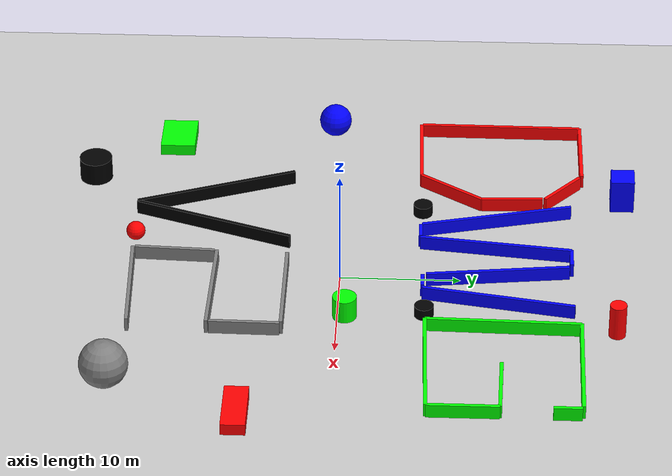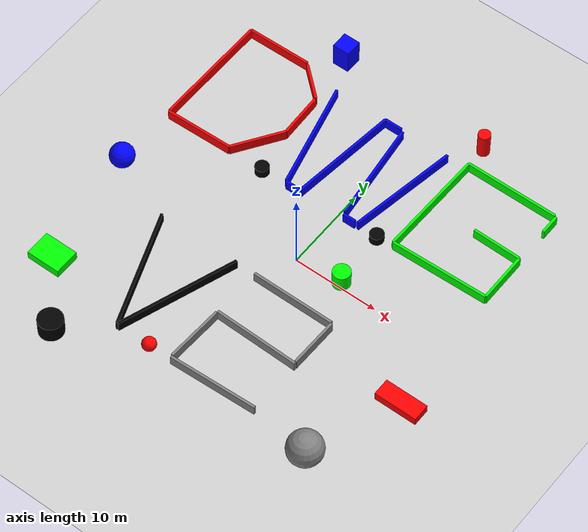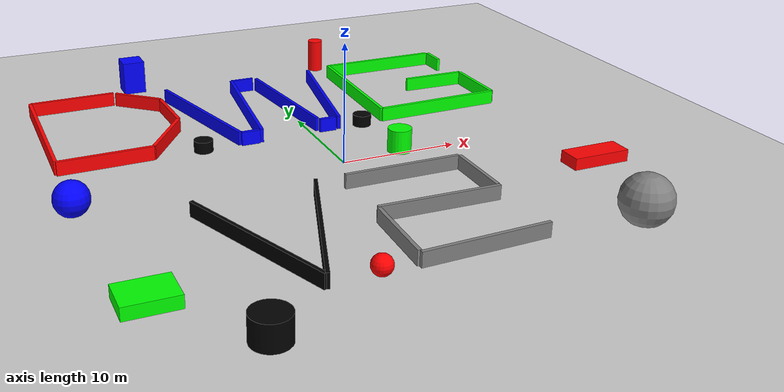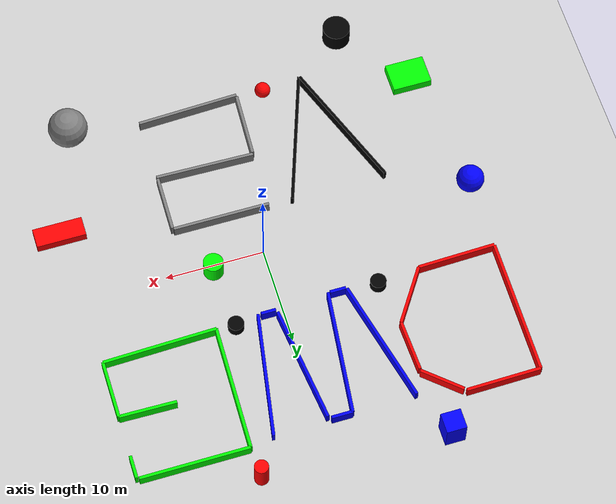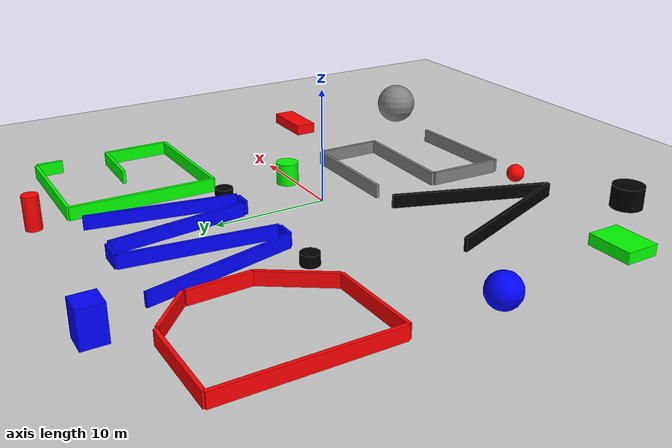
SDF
<?xml version='1.0' encoding='utf-8'?>
<sdf version="1.9">
  <world name="new_world">
    <physics name="1ms" type="dart">
      <max_step_size>0.001</max_step_size>
      <real_time_factor>1</real_time_factor>
      <real_time_update_rate>1000</real_time_update_rate>
    </physics>
    <plugin name="gz::sim::systems::Physics" filename="gz-sim-physics-system" />
    <plugin name="gz::sim::systems::UserCommands" filename="gz-sim-user-commands-system" />
    <plugin name="gz::sim::systems::SceneBroadcaster" filename="gz-sim-scene-broadcaster-system" />
    <plugin name="gz::sim::systems::Contact" filename="gz-sim-contact-system" />
    <plugin name="gz::sim::systems::Sensors" filename="gz-sim-sensors-system">
      <render_engine>ogre2</render_engine>
    </plugin>
    <gravity>0 0 -9.8</gravity>
    <magnetic_field>6e-06 2.3e-05 -4.2e-05</magnetic_field>
    <atmosphere type="adiabatic" />
    <scene>
      <ambient>0.4 0.4 0.4 1</ambient>
      <background>0.7 0.7 0.7 1</background>
      <shadows>true</shadows>
    </scene>
    <model name="ground_plane">
      <static>true</static>
      <link name="link">
        <collision name="collision">
          <geometry>
            <plane>
              <normal>0 0 1</normal>
              <size>100 100</size>
            </plane>
          </geometry>
          <surface>
            <friction>
              <ode />
            </friction>
            <bounce />
            <contact />
          </surface>
        </collision>
        <visual name="visual">
          <geometry>
            <plane>
              <normal>0 0 1</normal>
              <size>100 100</size>
            </plane>
          </geometry>
          <material>
            <ambient>0.8 0.8 0.8 1</ambient>
            <diffuse>0.8 0.8 0.8 1</diffuse>
            <specular>0.8 0.8 0.8 1</specular>
          </material>
        </visual>
        <pose>0 0 0 0 -0 0</pose>
        <inertial>
          <pose>0 0 0 0 -0 0</pose>
          <mass>1</mass>
          <inertia>
            <ixx>1</ixx>
            <ixy>0</ixy>
            <ixz>0</ixz>
            <iyy>1</iyy>
            <iyz>0</iyz>
            <izz>1</izz>
          </inertia>
        </inertial>
        <enable_wind>false</enable_wind>
      </link>
      <pose>0 0 0 0 -0 0</pose>
      <self_collide>false</self_collide>
    </model>
    <light name="sun" type="directional">
      <pose>0 0 10 0 -0 0</pose>
      <cast_shadows>true</cast_shadows>
      <intensity>1</intensity>
      <direction>-0.5 0.1 -0.9</direction>
      <diffuse>0.8 0.8 0.8 1</diffuse>
      <specular>0.2 0.2 0.2 1</specular>
      <attenuation>
        <range>1000</range>
        <linear>0.01</linear>
        <constant>0.90000000000000002</constant>
        <quadratic>0.001</quadratic>
      </attenuation>
      <spot>
        <inner_angle>0</inner_angle>
        <outer_angle>0</outer_angle>
        <falloff>0</falloff>
      </spot>
    </light>
  <model name="wall_1">
            <static>true</static>
            <type>wall</type>
            <pose>-21.750000 13.300000 0.600000 0 0 -1.578043</pose>
            <link name="link">
                <collision name="collision">
                    <geometry><box><size>13.800362 0.300000 1.200000</size></box></geometry>
                </collision>
                <visual name="visual">
                    <geometry><box><size>13.800362 0.300000 1.200000</size></box></geometry>
                    <material>
                        <diffuse>1 0 0 1</diffuse>
                    </material>
                </visual></link></model><model name="wall_2">
            <static>true</static>
            <type>wall</type>
            <pose>-17.850000 6.400000 0.600000 0 0 0.025311</pose>
            <link name="link">
                <collision name="collision">
                    <geometry><box><size>7.902531 0.300000 1.200000</size></box></geometry>
                </collision>
                <visual name="visual">
                    <geometry><box><size>7.902531 0.300000 1.200000</size></box></geometry>
                    <material>
                        <diffuse>1 0 0 1</diffuse>
                    </material>
                </visual></link></model><model name="wall_3">
            <static>true</static>
            <type>wall</type>
            <pose>-12.150000 9.100000 0.600000 0 0 0.978369</pose>
            <link name="link">
                <collision name="collision">
                    <geometry><box><size>6.268174 0.300000 1.200000</size></box></geometry>
                </collision>
                <visual name="visual">
                    <geometry><box><size>6.268174 0.300000 1.200000</size></box></geometry>
                    <material>
                        <diffuse>1 0 0 1</diffuse>
                    </material>
                </visual></link></model><model name="wall_4">
            <static>true</static>
            <type>wall</type>
            <pose>-10.500000 14.300000 0.600000 0 0 1.609239</pose>
            <link name="link">
                <collision name="collision">
                    <geometry><box><size>5.203845 0.300000 1.200000</size></box></geometry>
                </collision>
                <visual name="visual">
                    <geometry><box><size>5.203845 0.300000 1.200000</size></box></geometry>
                    <material>
                        <diffuse>1 0 0 1</diffuse>
                    </material>
                </visual></link></model><model name="wall_5">
            <static>true</static>
            <type>wall</type>
            <pose>-17.950000 20.250000 0.600000 0 0 0.013333</pose>
            <link name="link">
                <collision name="collision">
                    <geometry><box><size>7.500667 0.300000 1.200000</size></box></geometry>
                </collision>
                <visual name="visual">
                    <geometry><box><size>7.500667 0.300000 1.200000</size></box></geometry>
                    <material>
                        <diffuse>1 0 0 1</diffuse>
                    </material>
                </visual></link></model><model name="wall_6">
            <static>true</static>
            <type>wall</type>
            <pose>-12.300000 18.600000 0.600000 0 0 -0.722979</pose>
            <link name="link">
                <collision name="collision">
                    <geometry><box><size>4.534314 0.300000 1.200000</size></box></geometry>
                </collision>
                <visual name="visual">
                    <geometry><box><size>4.534314 0.300000 1.200000</size></box></geometry>
                    <material>
                        <diffuse>1 0 0 1</diffuse>
                    </material>
                </visual></link></model><model name="wall_7">
            <static>true</static>
            <type>wall</type>
            <pose>-8.000000 13.000000 0.600000 0 0 -1.337053</pose>
            <link name="link">
                <collision name="collision">
                    <geometry><box><size>12.952220 0.300000 1.200000</size></box></geometry>
                </collision>
                <visual name="visual">
                    <geometry><box><size>12.952220 0.300000 1.200000</size></box></geometry>
                    <material>
                        <diffuse>0 0 1 1</diffuse>
                    </material>
                </visual></link></model><model name="wall_8">
            <static>true</static>
            <type>wall</type>
            <pose>-5.600000 6.600000 0.600000 0 0 0.000000</pose>
            <link name="link">
                <collision name="collision">
                    <geometry><box><size>1.600000 0.300000 1.200000</size></box></geometry>
                </collision>
                <visual name="visual">
                    <geometry><box><size>1.600000 0.300000 1.200000</size></box></geometry>
                    <material>
                        <diffuse>0 0 1 1</diffuse>
                    </material>
                </visual></link></model><model name="wall_9">
            <static>true</static>
            <type>wall</type>
            <pose>-3.850000 12.950000 0.600000 0 0 1.453231</pose>
            <link name="link">
                <collision name="collision">
                    <geometry><box><size>12.788276 0.300000 1.200000</size></box></geometry>
                </collision>
                <visual name="visual">
                    <geometry><box><size>12.788276 0.300000 1.200000</size></box></geometry>
                    <material>
                        <diffuse>0 0 1 1</diffuse>
                    </material>
                </visual></link></model><model name="wall_10">
            <static>true</static>
            <type>wall</type>
            <pose>-2.050000 19.300000 0.600000 0 0 0.000000</pose>
            <link name="link">
                <collision name="collision">
                    <geometry><box><size>2.100000 0.300000 1.200000</size></box></geometry>
                </collision>
                <visual name="visual">
                    <geometry><box><size>2.100000 0.300000 1.200000</size></box></geometry>
                    <material>
                        <diffuse>0 0 1 1</diffuse>
                    </material>
                </visual></link></model><model name="wall_11">
            <static>true</static>
            <type>wall</type>
            <pose>0.000000 13.150000 0.600000 0 0 -1.453688</pose>
            <link name="link">
                <collision name="collision">
                    <geometry><box><size>11.982070 0.300000 1.200000</size></box></geometry>
                </collision>
                <visual name="visual">
                    <geometry><box><size>11.982070 0.300000 1.200000</size></box></geometry>
                    <material>
                        <diffuse>0 0 1 1</diffuse>
                    </material>
                </visual></link></model><model name="wall_12">
            <static>true</static>
            <type>wall</type>
            <pose>1.550000 6.900000 0.600000 0 0 0.000000</pose>
            <link name="link">
                <collision name="collision">
                    <geometry><box><size>1.500000 0.300000 1.200000</size></box></geometry>
                </collision>
                <visual name="visual">
                    <geometry><box><size>1.500000 0.300000 1.200000</size></box></geometry>
                    <material>
                        <diffuse>0 0 1 1</diffuse>
                    </material>
                </visual></link></model><model name="wall_13">
            <static>true</static>
            <type>wall</type>
            <pose>3.700000 13.200000 0.600000 0 0 1.397936</pose>
            <link name="link">
                <collision name="collision">
                    <geometry><box><size>12.790622 0.300000 1.200000</size></box></geometry>
                </collision>
                <visual name="visual">
                    <geometry><box><size>12.790622 0.300000 1.200000</size></box></geometry>
                    <material>
                        <diffuse>0 0 1 1</diffuse>
                    </material>
                </visual></link></model><model name="wall_14">
            <static>true</static>
            <type>wall</type>
            <pose>12.650000 20.000000 0.600000 0 0 0.000000</pose>
            <link name="link">
                <collision name="collision">
                    <geometry><box><size>10.900000 0.300000 1.200000</size></box></geometry>
                </collision>
                <visual name="visual">
                    <geometry><box><size>10.900000 0.300000 1.200000</size></box></geometry>
                    <material>
                        <diffuse>0 1 0 1</diffuse>
                    </material>
                </visual></link></model><model name="wall_15">
            <static>true</static>
            <type>wall</type>
            <pose>18.300000 18.750000 0.600000 0 0 -1.570796</pose>
            <link name="link">
                <collision name="collision">
                    <geometry><box><size>2.300000 0.300000 1.200000</size></box></geometry>
                </collision>
                <visual name="visual">
                    <geometry><box><size>2.300000 0.300000 1.200000</size></box></geometry>
                    <material>
                        <diffuse>0 1 0 1</diffuse>
                    </material>
                </visual></link></model><model name="wall_16">
            <static>true</static>
            <type>wall</type>
            <pose>7.050000 13.600000 0.600000 0 0 -1.594230</pose>
            <link name="link">
                <collision name="collision">
                    <geometry><box><size>12.803515 0.300000 1.200000</size></box></geometry>
                </collision>
                <visual name="visual">
                    <geometry><box><size>12.803515 0.300000 1.200000</size></box></geometry>
                    <material>
                        <diffuse>0 1 0 1</diffuse>
                    </material>
                </visual></link></model><model name="wall_17">
            <static>true</static>
            <type>wall</type>
            <pose>12.600000 7.350000 0.600000 0 0 0.026310</pose>
            <link name="link">
                <collision name="collision">
                    <geometry><box><size>11.403947 0.300000 1.200000</size></box></geometry>
                </collision>
                <visual name="visual">
                    <geometry><box><size>11.403947 0.300000 1.200000</size></box></geometry>
                    <material>
                        <diffuse>0 1 0 1</diffuse>
                    </material>
                </visual></link></model><model name="wall_18">
            <static>true</static>
            <type>wall</type>
            <pose>18.300000 10.450000 0.600000 0 0 1.570796</pose>
            <link name="link">
                <collision name="collision">
                    <geometry><box><size>5.900000 0.300000 1.200000</size></box></geometry>
                </collision>
                <visual name="visual">
                    <geometry><box><size>5.900000 0.300000 1.200000</size></box></geometry>
                    <material>
                        <diffuse>0 1 0 1</diffuse>
                    </material>
                </visual></link></model><model name="wall_19">
            <static>true</static>
            <type>wall</type>
            <pose>15.450000 13.450000 0.600000 0 0 3.124051</pose>
            <link name="link">
                <collision name="collision">
                    <geometry><box><size>5.700877 0.300000 1.200000</size></box></geometry>
                </collision>
                <visual name="visual">
                    <geometry><box><size>5.700877 0.300000 1.200000</size></box></geometry>
                    <material>
                        <diffuse>0 1 0 1</diffuse>
                    </material>
                </visual></link></model><model name="wall_20">
            <static>true</static>
            <type>wall</type>
            <pose>-11.550000 -11.100000 0.600000 0 0 -1.215351</pose>
            <link name="link">
                <collision name="collision">
                    <geometry><box><size>14.080128 0.300000 1.200000</size></box></geometry>
                </collision>
                <visual name="visual">
                    <geometry><box><size>14.080128 0.300000 1.200000</size></box></geometry>
                    <material>
                        <diffuse>0 0 0 1</diffuse>
                    </material>
                </visual></link></model><model name="wall_21">
            <static>true</static>
            <type>wall</type>
            <pose>-6.650000 -11.050000 0.600000 0 0 1.231110</pose>
            <link name="link">
                <collision name="collision">
                    <geometry><box><size>14.106027 0.300000 1.200000</size></box></geometry>
                </collision>
                <visual name="visual">
                    <geometry><box><size>14.106027 0.300000 1.200000</size></box></geometry>
                    <material>
                        <diffuse>0 0 0 1</diffuse>
                    </material>
                </visual></link></model><model name="wall_22">
            <static>true</static>
            <type>wall</type>
            <pose>3.000000 -4.500000 0.600000 0 0 0.000000</pose>
            <link name="link">
                <collision name="collision">
                    <geometry><box><size>9.800000 0.300000 1.200000</size></box></geometry>
                </collision>
                <visual name="visual">
                    <geometry><box><size>9.800000 0.300000 1.200000</size></box></geometry>
                    <material>
                        <diffuse>0.5 0.5 0.5 1</diffuse>
                    </material>
                </visual></link></model><model name="wall_23">
            <static>true</static>
            <type>wall</type>
            <pose>7.950000 -7.500000 0.600000 0 0 -1.588036</pose>
            <link name="link">
                <collision name="collision">
                    <geometry><box><size>5.800862 0.300000 1.200000</size></box></geometry>
                </collision>
                <visual name="visual">
                    <geometry><box><size>5.800862 0.300000 1.200000</size></box></geometry>
                    <material>
                        <diffuse>0.5 0.5 0.5 1</diffuse>
                    </material>
                </visual></link></model><model name="wall_24">
            <static>true</static>
            <type>wall</type>
            <pose>3.000000 -10.500000 0.600000 0 0 3.121595</pose>
            <link name="link">
                <collision name="collision">
                    <geometry><box><size>10.002000 0.300000 1.200000</size></box></geometry>
                </collision>
                <visual name="visual">
                    <geometry><box><size>10.002000 0.300000 1.200000</size></box></geometry>
                    <material>
                        <diffuse>0.5 0.5 0.5 1</diffuse>
                    </material>
                </visual></link></model><model name="wall_25">
            <static>true</static>
            <type>wall</type>
            <pose>-2.150000 -13.950000 0.600000 0 0 -1.615543</pose>
            <link name="link">
                <collision name="collision">
                    <geometry><box><size>6.706713 0.300000 1.200000</size></box></geometry>
                </collision>
                <visual name="visual">
                    <geometry><box><size>6.706713 0.300000 1.200000</size></box></geometry>
                    <material>
                        <diffuse>0.5 0.5 0.5 1</diffuse>
                    </material>
                </visual></link></model><model name="wall_26">
            <static>true</static>
            <type>wall</type>
            <pose>2.850000 -17.300000 0.600000 0 0 0.038815</pose>
            <link name="link">
                <collision name="collision">
                    <geometry><box><size>10.307764 0.300000 1.200000</size></box></geometry>
                </collision>
                <visual name="visual">
                    <geometry><box><size>10.307764 0.300000 1.200000</size></box></geometry>
                    <material>
                        <diffuse>0.5 0.5 0.5 1</diffuse>
                    </material>
                </visual></link></model><model name="sphere_1">
            <static>true</static>
            <type>sphere</type>
            <pose>-5.100000 -17.500000 0.800000 0 0 0</pose>
            <link name="link">
                <collision name="collision">
                    <geometry><sphere><radius>0.800000</radius></sphere></geometry>
                </collision>
                <visual name="visual">
                    <geometry><sphere><radius>0.800000</radius></sphere></geometry>
                    <material>
                        <diffuse>1 0 0 1</diffuse>
                    </material>
                </visual></link></model><model name="cylinder_2">
            <static>true</static>
            <type>cylinder</type>
            <pose>4.900000 7.100000 0.500000 0 0 0</pose>
            <link name="link">
                <collision name="collision">
                    <geometry><cylinder><radius>0.800000</radius><length>1.000000</length></cylinder></geometry>
                </collision>
                <visual name="visual">
                    <geometry><cylinder><radius>0.800000</radius><length>1.000000</length></cylinder></geometry>
                    <material>
                        <diffuse>0 0 0 1</diffuse>
                    </material>
                </visual></link></model><model name="cylinder_1">
            <static>true</static>
            <type>cylinder</type>
            <pose>-9.700000 6.700000 0.500000 0 0 0</pose>
            <link name="link">
                <collision name="collision">
                    <geometry><cylinder><radius>0.800000</radius><length>1.000000</length></cylinder></geometry>
                </collision>
                <visual name="visual">
                    <geometry><cylinder><radius>0.800000</radius><length>1.000000</length></cylinder></geometry>
                    <material>
                        <diffuse>0 0 0 1</diffuse>
                    </material>
                </visual></link></model><model name="box_2">
            <static>true</static>
            <type>box</type>
            <pose>18.800000 -7.500000 0.500000 0 0 0</pose>
            <link name="link">
                <collision name="collision">
                    <geometry><box><size>5.000000 2.000000 1.000000</size></box></geometry>
                </collision>
                <visual name="visual">
                    <geometry><box><size>5.000000 2.000000 1.000000</size></box></geometry>
                    <material>
                        <diffuse>1 0 0 1</diffuse>
                    </material>
                </visual></link></model><model name="sphere_3">
            <static>true</static>
            <type>sphere</type>
            <pose>-21.900000 -1.300000 1.400000 0 0 0</pose>
            <link name="link">
                <collision name="collision">
                    <geometry><sphere><radius>1.400000</radius></sphere></geometry>
                </collision>
                <visual name="visual">
                    <geometry><sphere><radius>1.400000</radius></sphere></geometry>
                    <material>
                        <diffuse>0 0 1 1</diffuse>
                    </material>
                </visual></link></model><model name="cylinder_4">
            <static>true</static>
            <type>cylinder</type>
            <pose>-14.300000 -21.800000 1.000000 0 0 0</pose>
            <link name="link">
                <collision name="collision">
                    <geometry><cylinder><radius>1.400000</radius><length>2.000000</length></cylinder></geometry>
                </collision>
                <visual name="visual">
                    <geometry><cylinder><radius>1.400000</radius><length>2.000000</length></cylinder></geometry>
                    <material>
                        <diffuse>0 0 0 1</diffuse>
                    </material>
                </visual></link></model><model name="box_3">
            <static>true</static>
            <type>box</type>
            <pose>-11.600000 23.700000 1.500000 0 0 0</pose>
            <link name="link">
                <collision name="collision">
                    <geometry><box><size>2.000000 2.000000 3.000000</size></box></geometry>
                </collision>
                <visual name="visual">
                    <geometry><box><size>2.000000 2.000000 3.000000</size></box></geometry>
                    <material>
                        <diffuse>0 0 1 1</diffuse>
                    </material>
                </visual></link></model><model name="cylinder_5">
            <static>false</static>
            <type>cylinder</type>
            <pose>7.000000 22.900000 1.500000 0 0 0</pose>
            <link name="link">
                <collision name="collision">
                    <geometry><cylinder><radius>0.700000</radius><length>3.000000</length></cylinder></geometry>
                </collision>
                <visual name="visual">
                    <geometry><cylinder><radius>0.700000</radius><length>3.000000</length></cylinder></geometry>
                    <material>
                        <diffuse>1 0 0 1</diffuse>
                    </material>
                </visual><inertial>
                <mass>4618.141201</mass>
                <inertia>
                    <ixx>4029.328198</ixx><ixy>0</ixy><ixz>0</ixz>
                    <iyy>4029.328198</iyy><iyz>0</iyz>
                    <izz>1131.444594</izz>
                </inertia>
            </inertial><gravity>false</gravity></link><motion><type>linear</type><velocity>3.000000</velocity><std>0.100000</std><point><x>-1.200000</x><y>22.700000</y></point><point><x>18.200000</x><y>22.800000</y></point></motion></model><model name="box_1">
            <static>false</static>
            <type>box</type>
            <pose>-19.900000 -15.000000 0.500000 0 0 0</pose>
            <link name="link">
                <collision name="collision">
                    <geometry><box><size>4.000000 3.000000 1.000000</size></box></geometry>
                </collision>
                <visual name="visual">
                    <geometry><box><size>4.000000 3.000000 1.000000</size></box></geometry>
                    <material>
                        <diffuse>0 1 0 1</diffuse>
                    </material>
                </visual><inertial>
                <mass>12000.000000</mass>
                <inertia>
                    <ixx>10000.000000</ixx><ixy>0</ixy><ixz>0</ixz>
                    <iyy>17000.000000</iyy><iyz>0</iyz>
                    <izz>25000.000000</izz>
                </inertia>
            </inertial><gravity>false</gravity></link><motion><type>polygon</type><velocity>5.000000</velocity><std>0.100000</std><point><x>-23.900000</x><y>-15.000000</y></point><point><x>-23.400000</x><y>-9.300000</y></point><point><x>-19.500000</x><y>-8.700000</y></point><point><x>-15.500000</x><y>-11.600000</y></point><point><x>-15.200000</x><y>-16.200000</y></point><point><x>-18.700000</x><y>-20.000000</y></point><point><x>-23.900000</x><y>-19.300000</y></point></motion></model><model name="cylinder_3">
            <static>false</static>
            <type>cylinder</type>
            <pose>5.300000 0.600000 1.000000 0 0 0</pose>
            <link name="link">
                <collision name="collision">
                    <geometry><cylinder><radius>1.000000</radius><length>2.000000</length></cylinder></geometry>
                </collision>
                <visual name="visual">
                    <geometry><cylinder><radius>1.000000</radius><length>2.000000</length></cylinder></geometry>
                    <material>
                        <diffuse>0 1 0 1</diffuse>
                    </material>
                </visual><inertial>
                <mass>6283.185307</mass>
                <inertia>
                    <ixx>3665.191429</ixx><ixy>0</ixy><ixz>0</ixz>
                    <iyy>3665.191429</iyy><iyz>0</iyz>
                    <izz>3141.592654</izz>
                </inertia>
            </inertial><gravity>false</gravity></link><motion><type>elliptical</type><velocity>3.500000</velocity><std>0.100000</std><semi_major>4.000000</semi_major><semi_minor>0.700000</semi_minor><angle>0.116355</angle></motion></model><model name="sphere_2">
            <static>false</static>
            <type>sphere</type>
            <pose>15.100000 -18.200000 2.000000 0 0 0</pose>
            <link name="link">
                <collision name="collision">
                    <geometry><sphere><radius>2.000000</radius></sphere></geometry>
                </collision>
                <visual name="visual">
                    <geometry><sphere><radius>2.000000</radius></sphere></geometry>
                    <material>
                        <diffuse>0.5 0.5 0.5 1</diffuse>
                    </material>
                </visual><inertial>
                <mass>33510.321638</mass>
                <inertia>
                    <ixx>53616.514621</ixx><ixy>0</ixy><ixz>0</ixz>
                    <iyy>53616.514621</iyy><iyz>0</iyz>
                    <izz>53616.514621</izz>
                </inertia>
            </inertial><gravity>false</gravity></link><motion><type>linear</type><velocity>8.000000</velocity><std>0.100000</std><point><x>5.700000</x><y>-22.200000</y></point><point><x>21.800000</x><y>-13.600000</y></point></motion></model></world>
</sdf>
